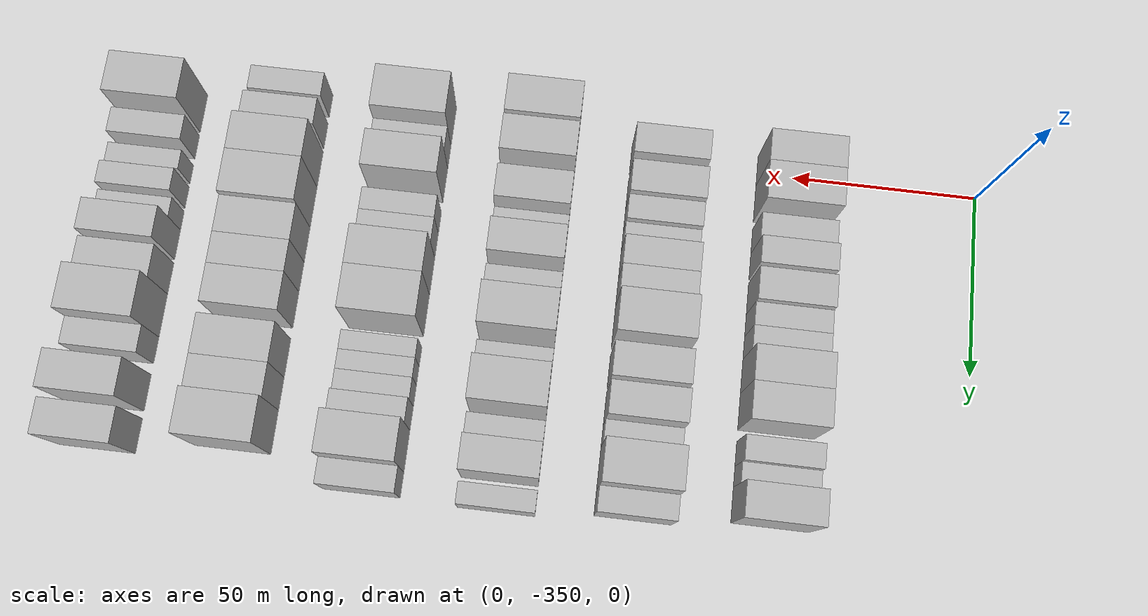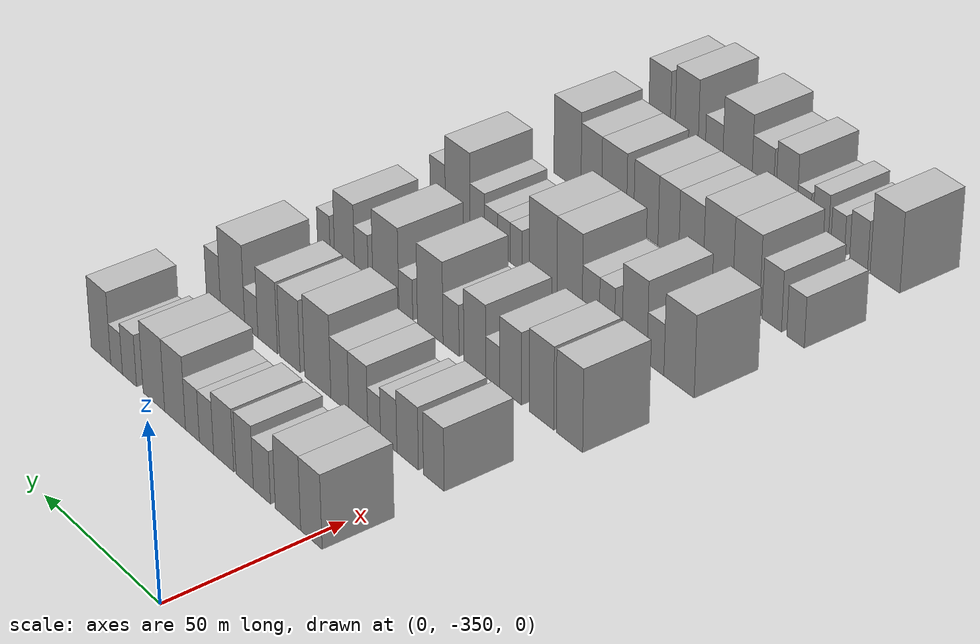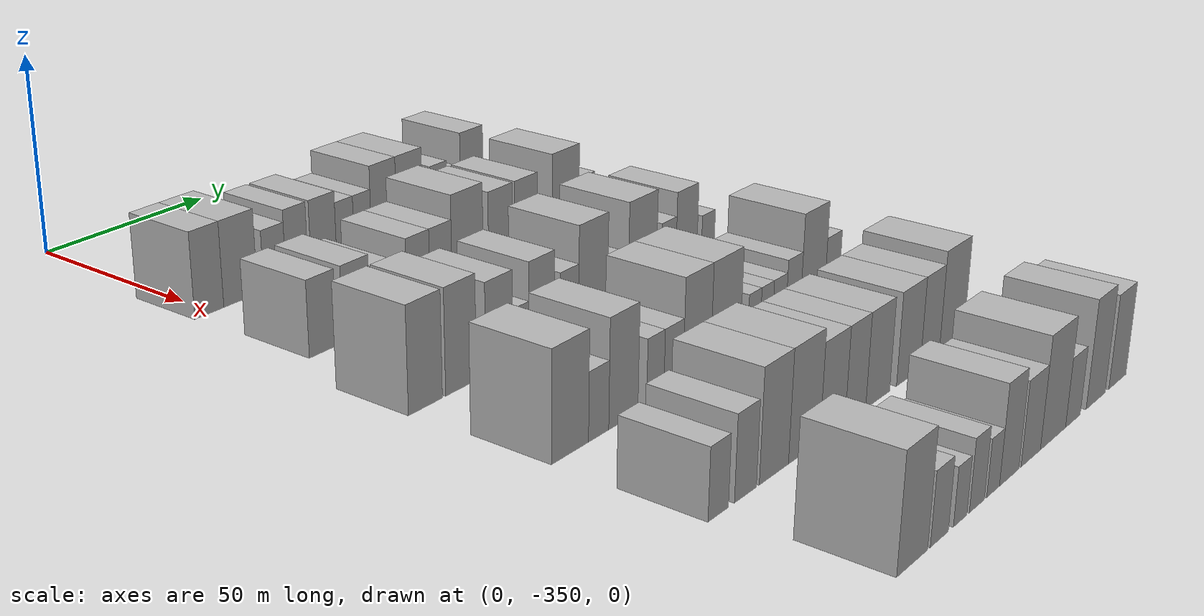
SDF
<sdf version="1.6">
 <world name="default">
  <model name="building_24">
   <static>1</static>
   <pose>50.0000 -350.8530 0 0.000000 0.000000 0.000000</pose>
   <link name="link">
    <pose>0 0 10.50 0 0 0</pose>
    <collision name="collision"><geometry><box><size>20.0000 8.6945 21.0000</size></box></geometry></collision>
    <visual name="visual">
     <cast_shadows>0</cast_shadows>
     <geometry><box><size>20.0000 8.6945 21.0000</size></box></geometry>
     <material>
      <script>
       <uri>model://HANNAS_wall/materials/scripts</uri>
       <uri>model://HANNAS_wall/materials/textures</uri>
       <name>vrc/HANNAS_wall</name>
      </script>
     </material>
    </visual>
   </link>
  </model>
  <model name="building_25">
   <static>1</static>
   <pose>50.0000 -341.2789 0 0.000000 0.000000 0.000000</pose>
   <link name="link">
    <pose>0 0 10.50 0 0 0</pose>
    <collision name="collision"><geometry><box><size>20.0000 10.4537 21.0000</size></box></geometry></collision>
    <visual name="visual">
     <cast_shadows>0</cast_shadows>
     <geometry><box><size>20.0000 10.4537 21.0000</size></box></geometry>
     <material>
      <script>
       <uri>model://HANNAS_wall/materials/scripts</uri>
       <uri>model://HANNAS_wall/materials/textures</uri>
       <name>vrc/HANNAS_wall</name>
      </script>
     </material>
    </visual>
   </link>
  </model>
  <model name="building_26">
   <static>1</static>
   <pose>50.0000 -330.4566 0 0.000000 0.000000 0.000000</pose>
   <link name="link">
    <pose>0 0 7.50 0 0 0</pose>
    <collision name="collision"><geometry><box><size>20.0000 7.1910 15.0000</size></box></geometry></collision>
    <visual name="visual">
     <cast_shadows>0</cast_shadows>
     <geometry><box><size>20.0000 7.1910 15.0000</size></box></geometry>
     <material>
      <script>
       <uri>model://HANNAS_wall/materials/scripts</uri>
       <uri>model://HANNAS_wall/materials/textures</uri>
       <name>vrc/HANNAS_wall</name>
      </script>
     </material>
    </visual>
   </link>
  </model>
  <model name="building_27">
   <static>1</static>
   <pose>50.0000 -323.1997 0 0.000000 0.000000 0.000000</pose>
   <link name="link">
    <pose>0 0 9.00 0 0 0</pose>
    <collision name="collision"><geometry><box><size>20.0000 7.3229 18.0000</size></box></geometry></collision>
    <visual name="visual">
     <cast_shadows>0</cast_shadows>
     <geometry><box><size>20.0000 7.3229 18.0000</size></box></geometry>
     <material>
      <script>
       <uri>model://HANNAS_wall/materials/scripts</uri>
       <uri>model://HANNAS_wall/materials/textures</uri>
       <name>vrc/HANNAS_wall</name>
      </script>
     </material>
    </visual>
   </link>
  </model>
  <model name="building_28">
   <static>1</static>
   <pose>50.0000 -314.2013 0 0.000000 0.000000 0.000000</pose>
   <link name="link">
    <pose>0 0 9.00 0 0 0</pose>
    <collision name="collision"><geometry><box><size>20.0000 8.6739 18.0000</size></box></geometry></collision>
    <visual name="visual">
     <cast_shadows>0</cast_shadows>
     <geometry><box><size>20.0000 8.6739 18.0000</size></box></geometry>
     <material>
      <script>
       <uri>model://HANNAS_wall/materials/scripts</uri>
       <uri>model://HANNAS_wall/materials/textures</uri>
       <name>vrc/HANNAS_wall</name>
      </script>
     </material>
    </visual>
   </link>
  </model>
  <model name="building_29">
   <static>1</static>
   <pose>50.0000 -306.7823 0 0.000000 0.000000 0.000000</pose>
   <link name="link">
    <pose>0 0 7.50 0 0 0</pose>
    <collision name="collision"><geometry><box><size>20.0000 6.1640 15.0000</size></box></geometry></collision>
    <visual name="visual">
     <cast_shadows>0</cast_shadows>
     <geometry><box><size>20.0000 6.1640 15.0000</size></box></geometry>
     <material>
      <script>
       <uri>model://HANNAS_wall/materials/scripts</uri>
       <uri>model://HANNAS_wall/materials/textures</uri>
       <name>vrc/HANNAS_wall</name>
      </script>
     </material>
    </visual>
   </link>
  </model>
  <model name="building_30">
   <static>1</static>
   <pose>50.0000 -300.6237 0 0.000000 0.000000 0.000000</pose>
   <link name="link">
    <pose>0 0 7.50 0 0 0</pose>
    <collision name="collision"><geometry><box><size>20.0000 6.1533 15.0000</size></box></geometry></collision>
    <visual name="visual">
     <cast_shadows>0</cast_shadows>
     <geometry><box><size>20.0000 6.1533 15.0000</size></box></geometry>
     <material>
      <script>
       <uri>model://HANNAS_wall/materials/scripts</uri>
       <uri>model://HANNAS_wall/materials/textures</uri>
       <name>vrc/HANNAS_wall</name>
      </script>
     </material>
    </visual>
   </link>
  </model>
  <model name="building_31">
   <static>1</static>
   <pose>50.0000 -292.9258 0 0.000000 0.000000 0.000000</pose>
   <link name="link">
    <pose>0 0 10.50 0 0 0</pose>
    <collision name="collision"><geometry><box><size>20.0000 9.2425 21.0000</size></box></geometry></collision>
    <visual name="visual">
     <cast_shadows>0</cast_shadows>
     <geometry><box><size>20.0000 9.2425 21.0000</size></box></geometry>
     <material>
      <script>
       <uri>model://HANNAS_wall/materials/scripts</uri>
       <uri>model://HANNAS_wall/materials/textures</uri>
       <name>vrc/HANNAS_wall</name>
      </script>
     </material>
    </visual>
   </link>
  </model>
  <model name="building_32">
   <static>1</static>
   <pose>50.0000 -283.4557 0 0.000000 0.000000 0.000000</pose>
   <link name="link">
    <pose>0 0 10.50 0 0 0</pose>
    <collision name="collision"><geometry><box><size>20.0000 9.6978 21.0000</size></box></geometry></collision>
    <visual name="visual">
     <cast_shadows>0</cast_shadows>
     <geometry><box><size>20.0000 9.6978 21.0000</size></box></geometry>
     <material>
      <script>
       <uri>model://HANNAS_wall/materials/scripts</uri>
       <uri>model://HANNAS_wall/materials/textures</uri>
       <name>vrc/HANNAS_wall</name>
      </script>
     </material>
    </visual>
   </link>
  </model>
  <model name="building_33">
   <static>1</static>
   <pose>50.0000 -272.3786 0 0.000000 0.000000 0.000000</pose>
   <link name="link">
    <pose>0 0 7.50 0 0 0</pose>
    <collision name="collision"><geometry><box><size>20.0000 6.4563 15.0000</size></box></geometry></collision>
    <visual name="visual">
     <cast_shadows>0</cast_shadows>
     <geometry><box><size>20.0000 6.4563 15.0000</size></box></geometry>
     <material>
      <script>
       <uri>model://HANNAS_wall/materials/scripts</uri>
       <uri>model://HANNAS_wall/materials/textures</uri>
       <name>vrc/HANNAS_wall</name>
      </script>
     </material>
    </visual>
   </link>
  </model>
  <model name="building_34">
   <static>1</static>
   <pose>50.0000 -266.4508 0 0.000000 0.000000 0.000000</pose>
   <link name="link">
    <pose>0 0 6.00 0 0 0</pose>
    <collision name="collision"><geometry><box><size>20.0000 5.3995 12.0000</size></box></geometry></collision>
    <visual name="visual">
     <cast_shadows>0</cast_shadows>
     <geometry><box><size>20.0000 5.3995 12.0000</size></box></geometry>
     <material>
      <script>
       <uri>model://HANNAS_wall/materials/scripts</uri>
       <uri>model://HANNAS_wall/materials/textures</uri>
       <name>vrc/HANNAS_wall</name>
      </script>
     </material>
    </visual>
   </link>
  </model>
  <model name="building_35">
   <static>1</static>
   <pose>50.0000 -259.1701 0 0.000000 0.000000 0.000000</pose>
   <link name="link">
    <pose>0 0 10.50 0 0 0</pose>
    <collision name="collision"><geometry><box><size>20.0000 9.1619 21.0000</size></box></geometry></collision>
    <visual name="visual">
     <cast_shadows>0</cast_shadows>
     <geometry><box><size>20.0000 9.1619 21.0000</size></box></geometry>
     <material>
      <script>
       <uri>model://HANNAS_wall/materials/scripts</uri>
       <uri>model://HANNAS_wall/materials/textures</uri>
       <name>vrc/HANNAS_wall</name>
      </script>
     </material>
    </visual>
   </link>
  </model>
  <model name="building_153">
   <static>1</static>
   <pose>85.0000 -349.8810 0 0.000000 0.000000 0.000000</pose>
   <link name="link">
    <pose>0 0 9.00 0 0 0</pose>
    <collision name="collision"><geometry><box><size>20.0000 8.2717 18.0000</size></box></geometry></collision>
    <visual name="visual">
     <cast_shadows>0</cast_shadows>
     <geometry><box><size>20.0000 8.2717 18.0000</size></box></geometry>
     <material>
      <script>
       <uri>model://HANNAS_wall/materials/scripts</uri>
       <uri>model://HANNAS_wall/materials/textures</uri>
       <name>vrc/HANNAS_wall</name>
      </script>
     </material>
    </visual>
   </link>
  </model>
  <model name="building_154">
   <static>1</static>
   <pose>85.0000 -339.3822 0 0.000000 0.000000 0.000000</pose>
   <link name="link">
    <pose>0 0 9.00 0 0 0</pose>
    <collision name="collision"><geometry><box><size>20.0000 8.7261 18.0000</size></box></geometry></collision>
    <visual name="visual">
     <cast_shadows>0</cast_shadows>
     <geometry><box><size>20.0000 8.7261 18.0000</size></box></geometry>
     <material>
      <script>
       <uri>model://HANNAS_wall/materials/scripts</uri>
       <uri>model://HANNAS_wall/materials/textures</uri>
       <name>vrc/HANNAS_wall</name>
      </script>
     </material>
    </visual>
   </link>
  </model>
  <model name="building_155">
   <static>1</static>
   <pose>85.0000 -331.6635 0 0.000000 0.000000 0.000000</pose>
   <link name="link">
    <pose>0 0 7.50 0 0 0</pose>
    <collision name="collision"><geometry><box><size>20.0000 6.7113 15.0000</size></box></geometry></collision>
    <visual name="visual">
     <cast_shadows>0</cast_shadows>
     <geometry><box><size>20.0000 6.7113 15.0000</size></box></geometry>
     <material>
      <script>
       <uri>model://HANNAS_wall/materials/scripts</uri>
       <uri>model://HANNAS_wall/materials/textures</uri>
       <name>vrc/HANNAS_wall</name>
      </script>
     </material>
    </visual>
   </link>
  </model>
  <model name="building_156">
   <static>1</static>
   <pose>85.0000 -325.6532 0 0.000000 0.000000 0.000000</pose>
   <link name="link">
    <pose>0 0 6.00 0 0 0</pose>
    <collision name="collision"><geometry><box><size>20.0000 5.3092 12.0000</size></box></geometry></collision>
    <visual name="visual">
     <cast_shadows>0</cast_shadows>
     <geometry><box><size>20.0000 5.3092 12.0000</size></box></geometry>
     <material>
      <script>
       <uri>model://HANNAS_wall/materials/scripts</uri>
       <uri>model://HANNAS_wall/materials/textures</uri>
       <name>vrc/HANNAS_wall</name>
      </script>
     </material>
    </visual>
   </link>
  </model>
  <model name="building_157">
   <static>1</static>
   <pose>85.0000 -319.0871 0 0.000000 0.000000 0.000000</pose>
   <link name="link">
    <pose>0 0 9.00 0 0 0</pose>
    <collision name="collision"><geometry><box><size>20.0000 7.8230 18.0000</size></box></geometry></collision>
    <visual name="visual">
     <cast_shadows>0</cast_shadows>
     <geometry><box><size>20.0000 7.8230 18.0000</size></box></geometry>
     <material>
      <script>
       <uri>model://HANNAS_wall/materials/scripts</uri>
       <uri>model://HANNAS_wall/materials/textures</uri>
       <name>vrc/HANNAS_wall</name>
      </script>
     </material>
    </visual>
   </link>
  </model>
  <model name="building_158">
   <static>1</static>
   <pose>85.0000 -311.3432 0 0.000000 0.000000 0.000000</pose>
   <link name="link">
    <pose>0 0 9.00 0 0 0</pose>
    <collision name="collision"><geometry><box><size>20.0000 7.6647 18.0000</size></box></geometry></collision>
    <visual name="visual">
     <cast_shadows>0</cast_shadows>
     <geometry><box><size>20.0000 7.6647 18.0000</size></box></geometry>
     <material>
      <script>
       <uri>model://HANNAS_wall/materials/scripts</uri>
       <uri>model://HANNAS_wall/materials/textures</uri>
       <name>vrc/HANNAS_wall</name>
      </script>
     </material>
    </visual>
   </link>
  </model>
  <model name="building_159">
   <static>1</static>
   <pose>85.0000 -301.8918 0 0.000000 0.000000 0.000000</pose>
   <link name="link">
    <pose>0 0 12.00 0 0 0</pose>
    <collision name="collision"><geometry><box><size>20.0000 11.2382 24.0000</size></box></geometry></collision>
    <visual name="visual">
     <cast_shadows>0</cast_shadows>
     <geometry><box><size>20.0000 11.2382 24.0000</size></box></geometry>
     <material>
      <script>
       <uri>model://HANNAS_wall/materials/scripts</uri>
       <uri>model://HANNAS_wall/materials/textures</uri>
       <name>vrc/HANNAS_wall</name>
      </script>
     </material>
    </visual>
   </link>
  </model>
  <model name="building_160">
   <static>1</static>
   <pose>85.0000 -289.8102 0 0.000000 0.000000 0.000000</pose>
   <link name="link">
    <pose>0 0 10.50 0 0 0</pose>
    <collision name="collision"><geometry><box><size>20.0000 8.9249 21.0000</size></box></geometry></collision>
    <visual name="visual">
     <cast_shadows>0</cast_shadows>
     <geometry><box><size>20.0000 8.9249 21.0000</size></box></geometry>
     <material>
      <script>
       <uri>model://HANNAS_wall/materials/scripts</uri>
       <uri>model://HANNAS_wall/materials/textures</uri>
       <name>vrc/HANNAS_wall</name>
      </script>
     </material>
    </visual>
   </link>
  </model>
  <model name="building_161">
   <static>1</static>
   <pose>85.0000 -280.0296 0 0.000000 0.000000 0.000000</pose>
   <link name="link">
    <pose>0 0 10.50 0 0 0</pose>
    <collision name="collision"><geometry><box><size>20.0000 8.6363 21.0000</size></box></geometry></collision>
    <visual name="visual">
     <cast_shadows>0</cast_shadows>
     <geometry><box><size>20.0000 8.6363 21.0000</size></box></geometry>
     <material>
      <script>
       <uri>model://HANNAS_wall/materials/scripts</uri>
       <uri>model://HANNAS_wall/materials/textures</uri>
       <name>vrc/HANNAS_wall</name>
      </script>
     </material>
    </visual>
   </link>
  </model>
  <model name="building_162">
   <static>1</static>
   <pose>85.0000 -272.7552 0 0.000000 0.000000 0.000000</pose>
   <link name="link">
    <pose>0 0 6.00 0 0 0</pose>
    <collision name="collision"><geometry><box><size>20.0000 5.9125 12.0000</size></box></geometry></collision>
    <visual name="visual">
     <cast_shadows>0</cast_shadows>
     <geometry><box><size>20.0000 5.9125 12.0000</size></box></geometry>
     <material>
      <script>
       <uri>model://HANNAS_wall/materials/scripts</uri>
       <uri>model://HANNAS_wall/materials/textures</uri>
       <name>vrc/HANNAS_wall</name>
      </script>
     </material>
    </visual>
   </link>
  </model>
  <model name="building_163">
   <static>1</static>
   <pose>85.0000 -264.2930 0 0.000000 0.000000 0.000000</pose>
   <link name="link">
    <pose>0 0 12.00 0 0 0</pose>
    <collision name="collision"><geometry><box><size>20.0000 11.0119 24.0000</size></box></geometry></collision>
    <visual name="visual">
     <cast_shadows>0</cast_shadows>
     <geometry><box><size>20.0000 11.0119 24.0000</size></box></geometry>
     <material>
      <script>
       <uri>model://HANNAS_wall/materials/scripts</uri>
       <uri>model://HANNAS_wall/materials/textures</uri>
       <name>vrc/HANNAS_wall</name>
      </script>
     </material>
    </visual>
   </link>
  </model>
  <model name="building_164">
   <static>1</static>
   <pose>85.0000 -255.5428 0 0.000000 0.000000 0.000000</pose>
   <link name="link">
    <pose>0 0 7.50 0 0 0</pose>
    <collision name="collision"><geometry><box><size>20.0000 6.4885 15.0000</size></box></geometry></collision>
    <visual name="visual">
     <cast_shadows>0</cast_shadows>
     <geometry><box><size>20.0000 6.4885 15.0000</size></box></geometry>
     <material>
      <script>
       <uri>model://HANNAS_wall/materials/scripts</uri>
       <uri>model://HANNAS_wall/materials/textures</uri>
       <name>vrc/HANNAS_wall</name>
      </script>
     </material>
    </visual>
   </link>
  </model>
  <model name="building_276">
   <static>1</static>
   <pose>120.0000 -356.0631 0 0.000000 0.000000 0.000000</pose>
   <link name="link">
    <pose>0 0 12.00 0 0 0</pose>
    <collision name="collision"><geometry><box><size>20.0000 10.2597 24.0000</size></box></geometry></collision>
    <visual name="visual">
     <cast_shadows>0</cast_shadows>
     <geometry><box><size>20.0000 10.2597 24.0000</size></box></geometry>
     <material>
      <script>
       <uri>model://HANNAS_wall/materials/scripts</uri>
       <uri>model://HANNAS_wall/materials/textures</uri>
       <name>vrc/HANNAS_wall</name>
      </script>
     </material>
    </visual>
   </link>
  </model>
  <model name="building_277">
   <static>1</static>
   <pose>120.0000 -345.0862 0 0.000000 0.000000 0.000000</pose>
   <link name="link">
    <pose>0 0 12.00 0 0 0</pose>
    <collision name="collision"><geometry><box><size>20.0000 9.6940 24.0000</size></box></geometry></collision>
    <visual name="visual">
     <cast_shadows>0</cast_shadows>
     <geometry><box><size>20.0000 9.6940 24.0000</size></box></geometry>
     <material>
      <script>
       <uri>model://HANNAS_wall/materials/scripts</uri>
       <uri>model://HANNAS_wall/materials/textures</uri>
       <name>vrc/HANNAS_wall</name>
      </script>
     </material>
    </visual>
   </link>
  </model>
  <model name="building_278">
   <static>1</static>
   <pose>120.0000 -332.7704 0 0.000000 0.000000 0.000000</pose>
   <link name="link">
    <pose>0 0 10.50 0 0 0</pose>
    <collision name="collision"><geometry><box><size>20.0000 8.9375 21.0000</size></box></geometry></collision>
    <visual name="visual">
     <cast_shadows>0</cast_shadows>
     <geometry><box><size>20.0000 8.9375 21.0000</size></box></geometry>
     <material>
      <script>
       <uri>model://HANNAS_wall/materials/scripts</uri>
       <uri>model://HANNAS_wall/materials/textures</uri>
       <name>vrc/HANNAS_wall</name>
      </script>
     </material>
    </visual>
   </link>
  </model>
  <model name="building_279">
   <static>1</static>
   <pose>120.0000 -325.5026 0 0.000000 0.000000 0.000000</pose>
   <link name="link">
    <pose>0 0 6.00 0 0 0</pose>
    <collision name="collision"><geometry><box><size>20.0000 5.5981 12.0000</size></box></geometry></collision>
    <visual name="visual">
     <cast_shadows>0</cast_shadows>
     <geometry><box><size>20.0000 5.5981 12.0000</size></box></geometry>
     <material>
      <script>
       <uri>model://HANNAS_wall/materials/scripts</uri>
       <uri>model://HANNAS_wall/materials/textures</uri>
       <name>vrc/HANNAS_wall</name>
      </script>
     </material>
    </visual>
   </link>
  </model>
  <model name="building_280">
   <static>1</static>
   <pose>120.0000 -318.2296 0 0.000000 0.000000 0.000000</pose>
   <link name="link">
    <pose>0 0 10.50 0 0 0</pose>
    <collision name="collision"><geometry><box><size>20.0000 8.9478 21.0000</size></box></geometry></collision>
    <visual name="visual">
     <cast_shadows>0</cast_shadows>
     <geometry><box><size>20.0000 8.9478 21.0000</size></box></geometry>
     <material>
      <script>
       <uri>model://HANNAS_wall/materials/scripts</uri>
       <uri>model://HANNAS_wall/materials/textures</uri>
       <name>vrc/HANNAS_wall</name>
      </script>
     </material>
    </visual>
   </link>
  </model>
  <model name="building_281">
   <static>1</static>
   <pose>120.0000 -308.4023 0 0.000000 0.000000 0.000000</pose>
   <link name="link">
    <pose>0 0 7.50 0 0 0</pose>
    <collision name="collision"><geometry><box><size>20.0000 6.7069 15.0000</size></box></geometry></collision>
    <visual name="visual">
     <cast_shadows>0</cast_shadows>
     <geometry><box><size>20.0000 6.7069 15.0000</size></box></geometry>
     <material>
      <script>
       <uri>model://HANNAS_wall/materials/scripts</uri>
       <uri>model://HANNAS_wall/materials/textures</uri>
       <name>vrc/HANNAS_wall</name>
      </script>
     </material>
    </visual>
   </link>
  </model>
  <model name="building_282">
   <static>1</static>
   <pose>120.0000 -299.6338 0 0.000000 0.000000 0.000000</pose>
   <link name="link">
    <pose>0 0 12.00 0 0 0</pose>
    <collision name="collision"><geometry><box><size>20.0000 10.8302 24.0000</size></box></geometry></collision>
    <visual name="visual">
     <cast_shadows>0</cast_shadows>
     <geometry><box><size>20.0000 10.8302 24.0000</size></box></geometry>
     <material>
      <script>
       <uri>model://HANNAS_wall/materials/scripts</uri>
       <uri>model://HANNAS_wall/materials/textures</uri>
       <name>vrc/HANNAS_wall</name>
      </script>
     </material>
    </visual>
   </link>
  </model>
  <model name="building_283">
   <static>1</static>
   <pose>120.0000 -289.2294 0 0.000000 0.000000 0.000000</pose>
   <link name="link">
    <pose>0 0 6.00 0 0 0</pose>
    <collision name="collision"><geometry><box><size>20.0000 5.9785 12.0000</size></box></geometry></collision>
    <visual name="visual">
     <cast_shadows>0</cast_shadows>
     <geometry><box><size>20.0000 5.9785 12.0000</size></box></geometry>
     <material>
      <script>
       <uri>model://HANNAS_wall/materials/scripts</uri>
       <uri>model://HANNAS_wall/materials/textures</uri>
       <name>vrc/HANNAS_wall</name>
      </script>
     </material>
    </visual>
   </link>
  </model>
  <model name="building_284">
   <static>1</static>
   <pose>120.0000 -280.6199 0 0.000000 0.000000 0.000000</pose>
   <link name="link">
    <pose>0 0 12.00 0 0 0</pose>
    <collision name="collision"><geometry><box><size>20.0000 11.2405 24.0000</size></box></geometry></collision>
    <visual name="visual">
     <cast_shadows>0</cast_shadows>
     <geometry><box><size>20.0000 11.2405 24.0000</size></box></geometry>
     <material>
      <script>
       <uri>model://HANNAS_wall/materials/scripts</uri>
       <uri>model://HANNAS_wall/materials/textures</uri>
       <name>vrc/HANNAS_wall</name>
      </script>
     </material>
    </visual>
   </link>
  </model>
  <model name="building_285">
   <static>1</static>
   <pose>120.0000 -269.9659 0 0.000000 0.000000 0.000000</pose>
   <link name="link">
    <pose>0 0 7.50 0 0 0</pose>
    <collision name="collision"><geometry><box><size>20.0000 6.0675 15.0000</size></box></geometry></collision>
    <visual name="visual">
     <cast_shadows>0</cast_shadows>
     <geometry><box><size>20.0000 6.0675 15.0000</size></box></geometry>
     <material>
      <script>
       <uri>model://HANNAS_wall/materials/scripts</uri>
       <uri>model://HANNAS_wall/materials/textures</uri>
       <name>vrc/HANNAS_wall</name>
      </script>
     </material>
    </visual>
   </link>
  </model>
  <model name="building_286">
   <static>1</static>
   <pose>120.0000 -262.4479 0 0.000000 0.000000 0.000000</pose>
   <link name="link">
    <pose>0 0 10.50 0 0 0</pose>
    <collision name="collision"><geometry><box><size>20.0000 8.9686 21.0000</size></box></geometry></collision>
    <visual name="visual">
     <cast_shadows>0</cast_shadows>
     <geometry><box><size>20.0000 8.9686 21.0000</size></box></geometry>
     <material>
      <script>
       <uri>model://HANNAS_wall/materials/scripts</uri>
       <uri>model://HANNAS_wall/materials/textures</uri>
       <name>vrc/HANNAS_wall</name>
      </script>
     </material>
    </visual>
   </link>
  </model>
  <model name="building_287">
   <static>1</static>
   <pose>120.0000 -253.1241 0 0.000000 0.000000 0.000000</pose>
   <link name="link">
    <pose>0 0 6.00 0 0 0</pose>
    <collision name="collision"><geometry><box><size>20.0000 5.6789 12.0000</size></box></geometry></collision>
    <visual name="visual">
     <cast_shadows>0</cast_shadows>
     <geometry><box><size>20.0000 5.6789 12.0000</size></box></geometry>
     <material>
      <script>
       <uri>model://HANNAS_wall/materials/scripts</uri>
       <uri>model://HANNAS_wall/materials/textures</uri>
       <name>vrc/HANNAS_wall</name>
      </script>
     </material>
    </visual>
   </link>
  </model>
  <model name="building_404">
   <static>1</static>
   <pose>155.0000 -353.9003 0 0.000000 0.000000 0.000000</pose>
   <link name="link">
    <pose>0 0 12.00 0 0 0</pose>
    <collision name="collision"><geometry><box><size>20.0000 11.6537 24.0000</size></box></geometry></collision>
    <visual name="visual">
     <cast_shadows>0</cast_shadows>
     <geometry><box><size>20.0000 11.6537 24.0000</size></box></geometry>
     <material>
      <script>
       <uri>model://HANNAS_wall/materials/scripts</uri>
       <uri>model://HANNAS_wall/materials/textures</uri>
       <name>vrc/HANNAS_wall</name>
      </script>
     </material>
    </visual>
   </link>
  </model>
  <model name="building_405">
   <static>1</static>
   <pose>155.0000 -344.7773 0 0.000000 0.000000 0.000000</pose>
   <link name="link">
    <pose>0 0 7.50 0 0 0</pose>
    <collision name="collision"><geometry><box><size>20.0000 6.5925 15.0000</size></box></geometry></collision>
    <visual name="visual">
     <cast_shadows>0</cast_shadows>
     <geometry><box><size>20.0000 6.5925 15.0000</size></box></geometry>
     <material>
      <script>
       <uri>model://HANNAS_wall/materials/scripts</uri>
       <uri>model://HANNAS_wall/materials/textures</uri>
       <name>vrc/HANNAS_wall</name>
      </script>
     </material>
    </visual>
   </link>
  </model>
  <model name="building_406">
   <static>1</static>
   <pose>155.0000 -336.5575 0 0.000000 0.000000 0.000000</pose>
   <link name="link">
    <pose>0 0 12.00 0 0 0</pose>
    <collision name="collision"><geometry><box><size>20.0000 9.8470 24.0000</size></box></geometry></collision>
    <visual name="visual">
     <cast_shadows>0</cast_shadows>
     <geometry><box><size>20.0000 9.8470 24.0000</size></box></geometry>
     <material>
      <script>
       <uri>model://HANNAS_wall/materials/scripts</uri>
       <uri>model://HANNAS_wall/materials/textures</uri>
       <name>vrc/HANNAS_wall</name>
      </script>
     </material>
    </visual>
   </link>
  </model>
  <model name="building_407">
   <static>1</static>
   <pose>155.0000 -325.5871 0 0.000000 0.000000 0.000000</pose>
   <link name="link">
    <pose>0 0 7.50 0 0 0</pose>
    <collision name="collision"><geometry><box><size>20.0000 6.0940 15.0000</size></box></geometry></collision>
    <visual name="visual">
     <cast_shadows>0</cast_shadows>
     <geometry><box><size>20.0000 6.0940 15.0000</size></box></geometry>
     <material>
      <script>
       <uri>model://HANNAS_wall/materials/scripts</uri>
       <uri>model://HANNAS_wall/materials/textures</uri>
       <name>vrc/HANNAS_wall</name>
      </script>
     </material>
    </visual>
   </link>
  </model>
  <model name="building_408">
   <static>1</static>
   <pose>155.0000 -319.0745 0 0.000000 0.000000 0.000000</pose>
   <link name="link">
    <pose>0 0 7.50 0 0 0</pose>
    <collision name="collision"><geometry><box><size>20.0000 6.9311 15.0000</size></box></geometry></collision>
    <visual name="visual">
     <cast_shadows>0</cast_shadows>
     <geometry><box><size>20.0000 6.9311 15.0000</size></box></geometry>
     <material>
      <script>
       <uri>model://HANNAS_wall/materials/scripts</uri>
       <uri>model://HANNAS_wall/materials/textures</uri>
       <name>vrc/HANNAS_wall</name>
      </script>
     </material>
    </visual>
   </link>
  </model>
  <model name="building_409">
   <static>1</static>
   <pose>155.0000 -310.4271 0 0.000000 0.000000 0.000000</pose>
   <link name="link">
    <pose>0 0 12.00 0 0 0</pose>
    <collision name="collision"><geometry><box><size>20.0000 10.3638 24.0000</size></box></geometry></collision>
    <visual name="visual">
     <cast_shadows>0</cast_shadows>
     <geometry><box><size>20.0000 10.3638 24.0000</size></box></geometry>
     <material>
      <script>
       <uri>model://HANNAS_wall/materials/scripts</uri>
       <uri>model://HANNAS_wall/materials/textures</uri>
       <name>vrc/HANNAS_wall</name>
      </script>
     </material>
    </visual>
   </link>
  </model>
  <model name="building_410">
   <static>1</static>
   <pose>155.0000 -299.4622 0 0.000000 0.000000 0.000000</pose>
   <link name="link">
    <pose>0 0 12.00 0 0 0</pose>
    <collision name="collision"><geometry><box><size>20.0000 11.5658 24.0000</size></box></geometry></collision>
    <visual name="visual">
     <cast_shadows>0</cast_shadows>
     <geometry><box><size>20.0000 11.5658 24.0000</size></box></geometry>
     <material>
      <script>
       <uri>model://HANNAS_wall/materials/scripts</uri>
       <uri>model://HANNAS_wall/materials/textures</uri>
       <name>vrc/HANNAS_wall</name>
      </script>
     </material>
    </visual>
   </link>
  </model>
  <model name="building_411">
   <static>1</static>
   <pose>155.0000 -288.1336 0 0.000000 0.000000 0.000000</pose>
   <link name="link">
    <pose>0 0 6.00 0 0 0</pose>
    <collision name="collision"><geometry><box><size>20.0000 5.0915 12.0000</size></box></geometry></collision>
    <visual name="visual">
     <cast_shadows>0</cast_shadows>
     <geometry><box><size>20.0000 5.0915 12.0000</size></box></geometry>
     <material>
      <script>
       <uri>model://HANNAS_wall/materials/scripts</uri>
       <uri>model://HANNAS_wall/materials/textures</uri>
       <name>vrc/HANNAS_wall</name>
      </script>
     </material>
    </visual>
   </link>
  </model>
  <model name="building_412">
   <static>1</static>
   <pose>155.0000 -283.0195 0 0.000000 0.000000 0.000000</pose>
   <link name="link">
    <pose>0 0 6.00 0 0 0</pose>
    <collision name="collision"><geometry><box><size>20.0000 5.1367 12.0000</size></box></geometry></collision>
    <visual name="visual">
     <cast_shadows>0</cast_shadows>
     <geometry><box><size>20.0000 5.1367 12.0000</size></box></geometry>
     <material>
      <script>
       <uri>model://HANNAS_wall/materials/scripts</uri>
       <uri>model://HANNAS_wall/materials/textures</uri>
       <name>vrc/HANNAS_wall</name>
      </script>
     </material>
    </visual>
   </link>
  </model>
  <model name="building_413">
   <static>1</static>
   <pose>155.0000 -277.6067 0 0.000000 0.000000 0.000000</pose>
   <link name="link">
    <pose>0 0 6.00 0 0 0</pose>
    <collision name="collision"><geometry><box><size>20.0000 5.6888 12.0000</size></box></geometry></collision>
    <visual name="visual">
     <cast_shadows>0</cast_shadows>
     <geometry><box><size>20.0000 5.6888 12.0000</size></box></geometry>
     <material>
      <script>
       <uri>model://HANNAS_wall/materials/scripts</uri>
       <uri>model://HANNAS_wall/materials/textures</uri>
       <name>vrc/HANNAS_wall</name>
      </script>
     </material>
    </visual>
   </link>
  </model>
  <model name="building_414">
   <static>1</static>
   <pose>155.0000 -271.5851 0 0.000000 0.000000 0.000000</pose>
   <link name="link">
    <pose>0 0 7.50 0 0 0</pose>
    <collision name="collision"><geometry><box><size>20.0000 6.3546 15.0000</size></box></geometry></collision>
    <visual name="visual">
     <cast_shadows>0</cast_shadows>
     <geometry><box><size>20.0000 6.3546 15.0000</size></box></geometry>
     <material>
      <script>
       <uri>model://HANNAS_wall/materials/scripts</uri>
       <uri>model://HANNAS_wall/materials/textures</uri>
       <name>vrc/HANNAS_wall</name>
      </script>
     </material>
    </visual>
   </link>
  </model>
  <model name="building_415">
   <static>1</static>
   <pose>155.0000 -262.9890 0 0.000000 0.000000 0.000000</pose>
   <link name="link">
    <pose>0 0 12.00 0 0 0</pose>
    <collision name="collision"><geometry><box><size>20.0000 10.8376 24.0000</size></box></geometry></collision>
    <visual name="visual">
     <cast_shadows>0</cast_shadows>
     <geometry><box><size>20.0000 10.8376 24.0000</size></box></geometry>
     <material>
      <script>
       <uri>model://HANNAS_wall/materials/scripts</uri>
       <uri>model://HANNAS_wall/materials/textures</uri>
       <name>vrc/HANNAS_wall</name>
      </script>
     </material>
    </visual>
   </link>
  </model>
  <model name="building_416">
   <static>1</static>
   <pose>155.0000 -254.2144 0 0.000000 0.000000 0.000000</pose>
   <link name="link">
    <pose>0 0 7.50 0 0 0</pose>
    <collision name="collision"><geometry><box><size>20.0000 6.7116 15.0000</size></box></geometry></collision>
    <visual name="visual">
     <cast_shadows>0</cast_shadows>
     <geometry><box><size>20.0000 6.7116 15.0000</size></box></geometry>
     <material>
      <script>
       <uri>model://HANNAS_wall/materials/scripts</uri>
       <uri>model://HANNAS_wall/materials/textures</uri>
       <name>vrc/HANNAS_wall</name>
      </script>
     </material>
    </visual>
   </link>
  </model>
  <model name="building_538">
   <static>1</static>
   <pose>190.0000 -356.1026 0 0.000000 0.000000 0.000000</pose>
   <link name="link">
    <pose>0 0 7.50 0 0 0</pose>
    <collision name="collision"><geometry><box><size>20.0000 6.6684 15.0000</size></box></geometry></collision>
    <visual name="visual">
     <cast_shadows>0</cast_shadows>
     <geometry><box><size>20.0000 6.6684 15.0000</size></box></geometry>
     <material>
      <script>
       <uri>model://HANNAS_wall/materials/scripts</uri>
       <uri>model://HANNAS_wall/materials/textures</uri>
       <name>vrc/HANNAS_wall</name>
      </script>
     </material>
    </visual>
   </link>
  </model>
  <model name="building_539">
   <static>1</static>
   <pose>190.0000 -347.0286 0 0.000000 0.000000 0.000000</pose>
   <link name="link">
    <pose>0 0 9.00 0 0 0</pose>
    <collision name="collision"><geometry><box><size>20.0000 7.4796 18.0000</size></box></geometry></collision>
    <visual name="visual">
     <cast_shadows>0</cast_shadows>
     <geometry><box><size>20.0000 7.4796 18.0000</size></box></geometry>
     <material>
      <script>
       <uri>model://HANNAS_wall/materials/scripts</uri>
       <uri>model://HANNAS_wall/materials/textures</uri>
       <name>vrc/HANNAS_wall</name>
      </script>
     </material>
    </visual>
   </link>
  </model>
  <model name="building_540">
   <static>1</static>
   <pose>190.0000 -337.0914 0 0.000000 0.000000 0.000000</pose>
   <link name="link">
    <pose>0 0 12.00 0 0 0</pose>
    <collision name="collision"><geometry><box><size>20.0000 10.3947 24.0000</size></box></geometry></collision>
    <visual name="visual">
     <cast_shadows>0</cast_shadows>
     <geometry><box><size>20.0000 10.3947 24.0000</size></box></geometry>
     <material>
      <script>
       <uri>model://HANNAS_wall/materials/scripts</uri>
       <uri>model://HANNAS_wall/materials/textures</uri>
       <name>vrc/HANNAS_wall</name>
      </script>
     </material>
    </visual>
   </link>
  </model>
  <model name="building_541">
   <static>1</static>
   <pose>190.0000 -326.0500 0 0.000000 0.000000 0.000000</pose>
   <link name="link">
    <pose>0 0 12.00 0 0 0</pose>
    <collision name="collision"><geometry><box><size>20.0000 11.6882 24.0000</size></box></geometry></collision>
    <visual name="visual">
     <cast_shadows>0</cast_shadows>
     <geometry><box><size>20.0000 11.6882 24.0000</size></box></geometry>
     <material>
      <script>
       <uri>model://HANNAS_wall/materials/scripts</uri>
       <uri>model://HANNAS_wall/materials/textures</uri>
       <name>vrc/HANNAS_wall</name>
      </script>
     </material>
    </visual>
   </link>
  </model>
  <model name="building_542">
   <static>1</static>
   <pose>190.0000 -315.2739 0 0.000000 0.000000 0.000000</pose>
   <link name="link">
    <pose>0 0 10.50 0 0 0</pose>
    <collision name="collision"><geometry><box><size>20.0000 9.8641 21.0000</size></box></geometry></collision>
    <visual name="visual">
     <cast_shadows>0</cast_shadows>
     <geometry><box><size>20.0000 9.8641 21.0000</size></box></geometry>
     <material>
      <script>
       <uri>model://HANNAS_wall/materials/scripts</uri>
       <uri>model://HANNAS_wall/materials/textures</uri>
       <name>vrc/HANNAS_wall</name>
      </script>
     </material>
    </visual>
   </link>
  </model>
  <model name="building_543">
   <static>1</static>
   <pose>190.0000 -306.1394 0 0.000000 0.000000 0.000000</pose>
   <link name="link">
    <pose>0 0 10.50 0 0 0</pose>
    <collision name="collision"><geometry><box><size>20.0000 8.4048 21.0000</size></box></geometry></collision>
    <visual name="visual">
     <cast_shadows>0</cast_shadows>
     <geometry><box><size>20.0000 8.4048 21.0000</size></box></geometry>
     <material>
      <script>
       <uri>model://HANNAS_wall/materials/scripts</uri>
       <uri>model://HANNAS_wall/materials/textures</uri>
       <name>vrc/HANNAS_wall</name>
      </script>
     </material>
    </visual>
   </link>
  </model>
  <model name="building_544">
   <static>1</static>
   <pose>190.0000 -296.9141 0 0.000000 0.000000 0.000000</pose>
   <link name="link">
    <pose>0 0 10.50 0 0 0</pose>
    <collision name="collision"><geometry><box><size>20.0000 10.0460 21.0000</size></box></geometry></collision>
    <visual name="visual">
     <cast_shadows>0</cast_shadows>
     <geometry><box><size>20.0000 10.0460 21.0000</size></box></geometry>
     <material>
      <script>
       <uri>model://HANNAS_wall/materials/scripts</uri>
       <uri>model://HANNAS_wall/materials/textures</uri>
       <name>vrc/HANNAS_wall</name>
      </script>
     </material>
    </visual>
   </link>
  </model>
  <model name="building_545">
   <static>1</static>
   <pose>190.0000 -283.6624 0 0.000000 0.000000 0.000000</pose>
   <link name="link">
    <pose>0 0 10.50 0 0 0</pose>
    <collision name="collision"><geometry><box><size>20.0000 10.4573 21.0000</size></box></geometry></collision>
    <visual name="visual">
     <cast_shadows>0</cast_shadows>
     <geometry><box><size>20.0000 10.4573 21.0000</size></box></geometry>
     <material>
      <script>
       <uri>model://HANNAS_wall/materials/scripts</uri>
       <uri>model://HANNAS_wall/materials/textures</uri>
       <name>vrc/HANNAS_wall</name>
      </script>
     </material>
    </visual>
   </link>
  </model>
  <model name="building_546">
   <static>1</static>
   <pose>190.0000 -274.0550 0 0.000000 0.000000 0.000000</pose>
   <link name="link">
    <pose>0 0 10.50 0 0 0</pose>
    <collision name="collision"><geometry><box><size>20.0000 8.7576 21.0000</size></box></geometry></collision>
    <visual name="visual">
     <cast_shadows>0</cast_shadows>
     <geometry><box><size>20.0000 8.7576 21.0000</size></box></geometry>
     <material>
      <script>
       <uri>model://HANNAS_wall/materials/scripts</uri>
       <uri>model://HANNAS_wall/materials/textures</uri>
       <name>vrc/HANNAS_wall</name>
      </script>
     </material>
    </visual>
   </link>
  </model>
  <model name="building_547">
   <static>1</static>
   <pose>190.0000 -263.8445 0 0.000000 0.000000 0.000000</pose>
   <link name="link">
    <pose>0 0 12.00 0 0 0</pose>
    <collision name="collision"><geometry><box><size>20.0000 11.6634 24.0000</size></box></geometry></collision>
    <visual name="visual">
     <cast_shadows>0</cast_shadows>
     <geometry><box><size>20.0000 11.6634 24.0000</size></box></geometry>
     <material>
      <script>
       <uri>model://HANNAS_wall/materials/scripts</uri>
       <uri>model://HANNAS_wall/materials/textures</uri>
       <name>vrc/HANNAS_wall</name>
      </script>
     </material>
    </visual>
   </link>
  </model>
  <model name="building_661">
   <static>1</static>
   <pose>225.0000 -349.6616 0 0.000000 0.000000 0.000000</pose>
   <link name="link">
    <pose>0 0 12.00 0 0 0</pose>
    <collision name="collision"><geometry><box><size>20.0000 11.2742 24.0000</size></box></geometry></collision>
    <visual name="visual">
     <cast_shadows>0</cast_shadows>
     <geometry><box><size>20.0000 11.2742 24.0000</size></box></geometry>
     <material>
      <script>
       <uri>model://HANNAS_wall/materials/scripts</uri>
       <uri>model://HANNAS_wall/materials/textures</uri>
       <name>vrc/HANNAS_wall</name>
      </script>
     </material>
    </visual>
   </link>
  </model>
  <model name="building_662">
   <static>1</static>
   <pose>225.0000 -339.5811 0 0.000000 0.000000 0.000000</pose>
   <link name="link">
    <pose>0 0 7.50 0 0 0</pose>
    <collision name="collision"><geometry><box><size>20.0000 6.8867 15.0000</size></box></geometry></collision>
    <visual name="visual">
     <cast_shadows>0</cast_shadows>
     <geometry><box><size>20.0000 6.8867 15.0000</size></box></geometry>
     <material>
      <script>
       <uri>model://HANNAS_wall/materials/scripts</uri>
       <uri>model://HANNAS_wall/materials/textures</uri>
       <name>vrc/HANNAS_wall</name>
      </script>
     </material>
    </visual>
   </link>
  </model>
  <model name="building_663">
   <static>1</static>
   <pose>225.0000 -331.4862 0 0.000000 0.000000 0.000000</pose>
   <link name="link">
    <pose>0 0 6.00 0 0 0</pose>
    <collision name="collision"><geometry><box><size>20.0000 5.3032 12.0000</size></box></geometry></collision>
    <visual name="visual">
     <cast_shadows>0</cast_shadows>
     <geometry><box><size>20.0000 5.3032 12.0000</size></box></geometry>
     <material>
      <script>
       <uri>model://HANNAS_wall/materials/scripts</uri>
       <uri>model://HANNAS_wall/materials/textures</uri>
       <name>vrc/HANNAS_wall</name>
      </script>
     </material>
    </visual>
   </link>
  </model>
  <model name="building_664">
   <static>1</static>
   <pose>225.0000 -324.7642 0 0.000000 0.000000 0.000000</pose>
   <link name="link">
    <pose>0 0 7.50 0 0 0</pose>
    <collision name="collision"><geometry><box><size>20.0000 6.1407 15.0000</size></box></geometry></collision>
    <visual name="visual">
     <cast_shadows>0</cast_shadows>
     <geometry><box><size>20.0000 6.1407 15.0000</size></box></geometry>
     <material>
      <script>
       <uri>model://HANNAS_wall/materials/scripts</uri>
       <uri>model://HANNAS_wall/materials/textures</uri>
       <name>vrc/HANNAS_wall</name>
      </script>
     </material>
    </visual>
   </link>
  </model>
  <model name="building_665">
   <static>1</static>
   <pose>225.0000 -318.0175 0 0.000000 0.000000 0.000000</pose>
   <link name="link">
    <pose>0 0 6.00 0 0 0</pose>
    <collision name="collision"><geometry><box><size>20.0000 5.3528 12.0000</size></box></geometry></collision>
    <visual name="visual">
     <cast_shadows>0</cast_shadows>
     <geometry><box><size>20.0000 5.3528 12.0000</size></box></geometry>
     <material>
      <script>
       <uri>model://HANNAS_wall/materials/scripts</uri>
       <uri>model://HANNAS_wall/materials/textures</uri>
       <name>vrc/HANNAS_wall</name>
      </script>
     </material>
    </visual>
   </link>
  </model>
  <model name="building_666">
   <static>1</static>
   <pose>225.0000 -311.1341 0 0.000000 0.000000 0.000000</pose>
   <link name="link">
    <pose>0 0 10.50 0 0 0</pose>
    <collision name="collision"><geometry><box><size>20.0000 8.4138 21.0000</size></box></geometry></collision>
    <visual name="visual">
     <cast_shadows>0</cast_shadows>
     <geometry><box><size>20.0000 8.4138 21.0000</size></box></geometry>
     <material>
      <script>
       <uri>model://HANNAS_wall/materials/scripts</uri>
       <uri>model://HANNAS_wall/materials/textures</uri>
       <name>vrc/HANNAS_wall</name>
      </script>
     </material>
    </visual>
   </link>
  </model>
  <model name="building_667">
   <static>1</static>
   <pose>225.0000 -301.5496 0 0.000000 0.000000 0.000000</pose>
   <link name="link">
    <pose>0 0 9.00 0 0 0</pose>
    <collision name="collision"><geometry><box><size>20.0000 8.7553 18.0000</size></box></geometry></collision>
    <visual name="visual">
     <cast_shadows>0</cast_shadows>
     <geometry><box><size>20.0000 8.7553 18.0000</size></box></geometry>
     <material>
      <script>
       <uri>model://HANNAS_wall/materials/scripts</uri>
       <uri>model://HANNAS_wall/materials/textures</uri>
       <name>vrc/HANNAS_wall</name>
      </script>
     </material>
    </visual>
   </link>
  </model>
  <model name="building_668">
   <static>1</static>
   <pose>225.0000 -291.2188 0 0.000000 0.000000 0.000000</pose>
   <link name="link">
    <pose>0 0 12.00 0 0 0</pose>
    <collision name="collision"><geometry><box><size>20.0000 11.9062 24.0000</size></box></geometry></collision>
    <visual name="visual">
     <cast_shadows>0</cast_shadows>
     <geometry><box><size>20.0000 11.9062 24.0000</size></box></geometry>
     <material>
      <script>
       <uri>model://HANNAS_wall/materials/scripts</uri>
       <uri>model://HANNAS_wall/materials/textures</uri>
       <name>vrc/HANNAS_wall</name>
      </script>
     </material>
    </visual>
   </link>
  </model>
  <model name="building_669">
   <static>1</static>
   <pose>225.0000 -281.6504 0 0.000000 0.000000 0.000000</pose>
   <link name="link">
    <pose>0 0 7.50 0 0 0</pose>
    <collision name="collision"><geometry><box><size>20.0000 7.2307 15.0000</size></box></geometry></collision>
    <visual name="visual">
     <cast_shadows>0</cast_shadows>
     <geometry><box><size>20.0000 7.2307 15.0000</size></box></geometry>
     <material>
      <script>
       <uri>model://HANNAS_wall/materials/scripts</uri>
       <uri>model://HANNAS_wall/materials/textures</uri>
       <name>vrc/HANNAS_wall</name>
      </script>
     </material>
    </visual>
   </link>
  </model>
  <model name="building_670">
   <static>1</static>
   <pose>225.0000 -270.1554 0 0.000000 0.000000 0.000000</pose>
   <link name="link">
    <pose>0 0 12.00 0 0 0</pose>
    <collision name="collision"><geometry><box><size>20.0000 9.7593 24.0000</size></box></geometry></collision>
    <visual name="visual">
     <cast_shadows>0</cast_shadows>
     <geometry><box><size>20.0000 9.7593 24.0000</size></box></geometry>
     <material>
      <script>
       <uri>model://HANNAS_wall/materials/scripts</uri>
       <uri>model://HANNAS_wall/materials/textures</uri>
       <name>vrc/HANNAS_wall</name>
      </script>
     </material>
    </visual>
   </link>
  </model>
  <model name="building_671">
   <static>1</static>
   <pose>225.0000 -258.6734 0 0.000000 0.000000 0.000000</pose>
   <link name="link">
    <pose>0 0 10.50 0 0 0</pose>
    <collision name="collision"><geometry><box><size>20.0000 9.2045 21.0000</size></box></geometry></collision>
    <visual name="visual">
     <cast_shadows>0</cast_shadows>
     <geometry><box><size>20.0000 9.2045 21.0000</size></box></geometry>
     <material>
      <script>
       <uri>model://HANNAS_wall/materials/scripts</uri>
       <uri>model://HANNAS_wall/materials/textures</uri>
       <name>vrc/HANNAS_wall</name>
      </script>
     </material>
    </visual>
   </link>
  </model>
 </world>
</sdf>
